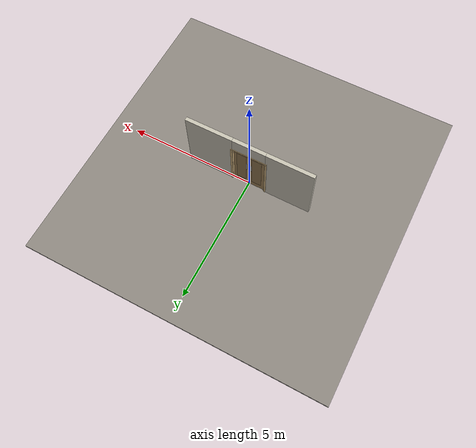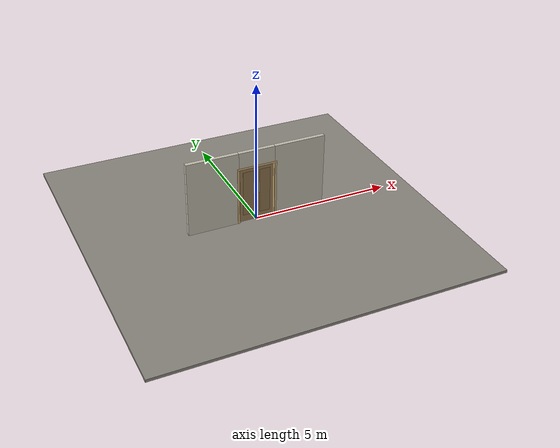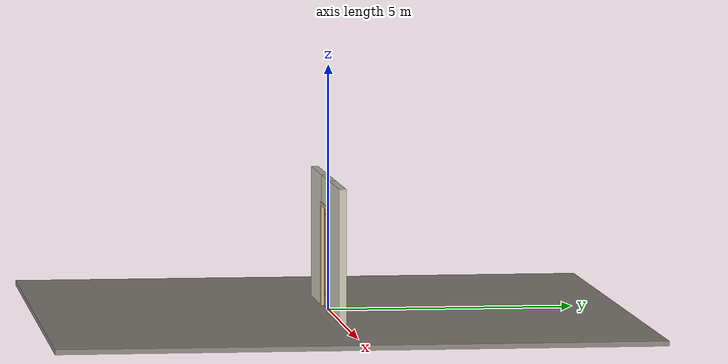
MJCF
<?xml version="1.0" ?>
<mujoco model="db0899_saloon_full">
  <compiler angle="radian" meshdir="../../hardware" texturedir="../../textures" autolimits="true" inertiafromgeom="false"/>
  <option timestep="0.002" integrator="implicitfast" cone="elliptic" impratio="10" noslip_iterations="3">
    <flag multiccd="enable"/>
  </option>
  <size memory="16M"/>
  <default>
    <geom condim="4" solref="0.005 1" solimp="0.95 0.99 0.001"/>
    <joint solreflimit="0.005 1" solimplimit="0.95 0.99 0.001"/>
    <tendon solreflimit="0.005 1"/>
    <equality solref="0.002 1"/>
  </default>
  <visual>
    <headlight ambient="0.4 0.4 0.4" diffuse="0.7 0.7 0.7" specular="0.2 0.2 0.2"/>
    <quality shadowsize="4096"/>
    <map znear="0.01" zfar="60"/>
  </visual>
  <asset>
    <material name="mat_floor" rgba="0.55 0.53 0.5 1" specular="0.2" shininess="0.15" reflectance="0"/>
    <material name="mat_wall" rgba="0.78 0.76 0.7 1" specular="0.2" shininess="0.1" reflectance="0"/>
    <material name="mat_frame" rgba="0.82 0.7 0.5 1" specular="0.2" shininess="0.45" reflectance="0"/>
    <material name="mat_leaf_a" rgba="0.62 0.503 0.34 1" specular="0.2" shininess="0.45" reflectance="0"/>
    <material name="mat_leaf_a_panel" rgba="0.571 0.463 0.313 1" specular="0.2" shininess="0.45" reflectance="0"/>
    <material name="mat_hinge" rgba="0.65 0.66 0.68 1" specular="0.74" shininess="0.5" reflectance="0.36"/>
    <material name="mat_op_stainless" rgba="0.75 0.76 0.77 1" specular="0.8" shininess="0.65" reflectance="0.4"/>
    <material name="mat_leaf_b" rgba="0.62 0.503 0.34 1" specular="0.2" shininess="0.45" reflectance="0"/>
    <material name="mat_leaf_b_panel" rgba="0.571 0.463 0.313 1" specular="0.2" shininess="0.45" reflectance="0"/>
    <texture name="skybox" type="skybox" builtin="gradient" rgb1="0.6 0.7 0.85" rgb2="0.9 0.92 0.95" width="256" height="256"/>
  </asset>
  <worldbody>
    <light name="sun" pos="1.5 -2.5 4" dir="-0.3 0.5 -0.8" directional="true" diffuse="0.8 0.8 0.8" specular="0.3 0.3 0.3" castshadow="true"/>
    <light name="fill" pos="-1.5 2.5 3" dir="0.3 -0.5 -0.7" directional="true" diffuse="0.35 0.35 0.4" castshadow="false"/>
    <camera name="robot_view" pos="0 -2.554375 1.744225" xyaxes="1 0 0 0 0.26963 0.962964" fovy="52"/>
    <camera name="far_view" pos="0 2.554375 1.744225" xyaxes="-1 0 0 0 -0.26963 0.962964" fovy="52"/>
    <camera name="iso" pos="1.941325 -2.145675 2.152925" xyaxes="0.741536 0.670913 0 -0.242917 0.268487 0.932151" fovy="46"/>
    <camera name="detail_handle" pos="0.48 -0.8 1.28" xyaxes="0.97561 0.219512 0 -0.070934 0.315262 0.94635" fovy="38"/>
    <geom name="floor" type="box" size="6 6 0.05" pos="0 0 -0.05" material="mat_floor" group="0" contype="1" conaffinity="1" friction="0.8 0.005 0.0001" density="2400"/>
    <geom name="wall_left" type="box" size="0.9235 0.0725 1.35" pos="-1.5765 0 1.35" material="mat_wall" group="0" contype="1" conaffinity="1" friction="0.6 0.005 0.0001" density="800"/>
    <geom name="wall_right" type="box" size="0.9235 0.0725 1.35" pos="1.5765 0 1.35" material="mat_wall" group="0" contype="1" conaffinity="1" friction="0.6 0.005 0.0001" density="800"/>
    <geom name="wall_header" type="box" size="0.653 0.0725 0.3115" pos="0 0 2.3885" material="mat_wall" group="0" contype="1" conaffinity="1" friction="0.6 0.005 0.0001" density="800"/>
    <geom name="jamb_hinge" type="box" size="0.0095 0.0725 1.029" pos="-0.6435 0 1.029" material="mat_frame" group="0" contype="1" conaffinity="1" friction="0.6 0.005 0.0001" density="400"/>
    <geom name="jamb_strike" type="box" size="0.0095 0.0725 1.029" pos="0.6435 0 1.029" material="mat_frame" group="0" contype="1" conaffinity="1" friction="0.6 0.005 0.0001" density="400"/>
    <geom name="stud_strike" type="box" size="0.015 0.0725 1.029" pos="0.668 0 1.029" material="mat_wall" group="0" contype="1" conaffinity="1" friction="0.6 0.005 0.0001" density="500"/>
    <geom name="jamb_head" type="box" size="0.668 0.0725 0.0095" pos="0.015 0 2.0675" material="mat_frame" group="0" contype="1" conaffinity="1" friction="0.6 0.005 0.0001" density="400"/>
    <geom name="head_stud" type="box" size="0.668 0.0725 0.015" pos="0.015 0 2.092" material="mat_wall" group="0" contype="1" conaffinity="1" friction="0.6 0.005 0.0001" density="500"/>
    <geom name="casing_l_n" type="box" size="0.035 0.008 1.0385" pos="-0.683 -0.0805 1.029" material="mat_frame" group="2" contype="0" conaffinity="0" density="400"/>
    <geom name="casing_r_n" type="box" size="0.035 0.008 1.0385" pos="0.683 -0.0805 1.029" material="mat_frame" group="2" contype="0" conaffinity="0" density="400"/>
    <geom name="casing_h_n" type="box" size="0.718 0.008 0.035" pos="0 -0.0805 2.107" material="mat_frame" group="2" contype="0" conaffinity="0" density="400"/>
    <geom name="casing_l_p" type="box" size="0.035 0.008 1.0385" pos="-0.683 0.0805 1.029" material="mat_frame" group="2" contype="0" conaffinity="0" density="400"/>
    <geom name="casing_r_p" type="box" size="0.035 0.008 1.0385" pos="0.683 0.0805 1.029" material="mat_frame" group="2" contype="0" conaffinity="0" density="400"/>
    <geom name="casing_h_p" type="box" size="0.718 0.008 0.035" pos="0 0.0805 2.107" material="mat_frame" group="2" contype="0" conaffinity="0" density="400"/>
    <geom name="pivot_bottom_socket" type="box" size="0.035 0.035 0.0115" pos="-0.606 0 0.0015" material="mat_hinge" group="1" contype="0" conaffinity="0" density="7850"/>
    <geom name="pivot_top_bracket" type="box" size="0.035 0.035 0.0025" pos="-0.606 0 2.0555" material="mat_hinge" group="1" contype="0" conaffinity="0" density="7850"/>
    <geom name="pivot_bottom_socket_2" type="box" size="0.035 0.035 0.0115" pos="0.606 0 0.0015" material="mat_hinge" group="1" contype="0" conaffinity="0" density="7850"/>
    <geom name="pivot_top_bracket_2" type="box" size="0.035 0.035 0.0025" pos="0.606 0 2.0555" material="mat_hinge" group="1" contype="0" conaffinity="0" density="7850"/>
    <site name="approach_point" pos="0 -1.5 0" quat="1 0 0 0" size="0.05" rgba="0.2 0.9 0.2 0.5" group="4"/>
    <site name="goal_point" pos="0 1.5 0" quat="1 0 0 0" size="0.05" rgba="0.2 0.9 0.2 0.5" group="4"/>
    <site name="door_plane_center" pos="0 0 1.029" quat="1 0 0 0" size="0.02" rgba="0.2 0.9 0.2 0.5" group="4"/>
    <body name="leaf_a" pos="-0.634 0 0">
      <inertial pos="0.335048 0 1.039129" mass="21.9118" quat="0.501301 -0.501301 -0.498696 -0.498696" diaginertia="0.66753124 7.294422143 7.954187703"/>
      <joint name="leaf_a_hinge" type="hinge" axis="0 0 1" pos="0.028 0 0" limited="true" range="-1.570796 1.570796" damping="0.797514" frictionloss="0.528029" stiffness="6.6" springref="0" armature="0.02"/>
      <geom name="leaf_a_slab" type="box" size="0.3 0.022 1.015" pos="0.328 0 1.03" material="mat_leaf_a" group="0" contype="1" conaffinity="1" friction="0.35 0.005 0.0001" density="1"/>
      <geom name="leaf_a_panel_0_n" type="box" size="0.19 0.003 0.8326" pos="0.328 -0.025 1.0909" material="mat_leaf_a_panel" group="1" contype="0" conaffinity="0" density="1"/>
      <geom name="leaf_a_panel_0_p" type="box" size="0.19 0.003 0.8326" pos="0.328 0.025 1.0909" material="mat_leaf_a_panel" group="1" contype="0" conaffinity="0" density="1"/>
      <geom name="pivot_bottom" type="cylinder" size="0.014 0.004" pos="0.028 0 0.01" material="mat_hinge" group="1" contype="0" conaffinity="0" density="7850"/>
      <geom name="pivot_top" type="cylinder" size="0.014 0.004" pos="0.028 0 2.049" material="mat_hinge" group="1" contype="0" conaffinity="0" density="7850"/>
      <geom name="leaf_a_push_plate_n" type="box" size="0.05 0.0008 0.2" pos="0.508 -0.0228 1.233" material="mat_op_stainless" group="1" contype="0" conaffinity="0" density="7900"/>
      <geom name="leaf_a_push_plate_p" type="box" size="0.05 0.0008 0.2" pos="0.508 0.0228 1.233" material="mat_op_stainless" group="1" contype="0" conaffinity="0" density="7900"/>
      <site name="leaf_a_push_plate_push_n" pos="0.508 -0.022 1.233" quat="1 0 0 0" size="0.012" rgba="0.2 0.9 0.2 0.5" group="4"/>
      <site name="leaf_a_push_plate_push_p" pos="0.508 0.022 1.233" quat="1 0 0 0" size="0.012" rgba="0.2 0.9 0.2 0.5" group="4"/>
      <site name="leaf_a_push_site" pos="0.478 -0.022 1.233" quat="1 0 0 0" size="0.015" rgba="0.2 0.9 0.2 0.5" group="4"/>
    </body>
    <body name="leaf_b" pos="0.634 0 0">
      <inertial pos="-0.335048 0 1.039129" mass="21.9118" quat="0.501301 0.501301 0.498696 -0.498696" diaginertia="0.66753124 7.294422143 7.954187703"/>
      <joint name="leaf_b_hinge" type="hinge" axis="0 0 -1" pos="-0.028 0 0" limited="true" range="-1.570796 1.570796" damping="0.797514" frictionloss="0.528029" stiffness="6.6" springref="0" armature="0.02"/>
      <geom name="leaf_b_slab" type="box" size="0.3 0.022 1.015" pos="-0.328 0 1.03" material="mat_leaf_b" group="0" contype="1" conaffinity="1" friction="0.35 0.005 0.0001" density="1"/>
      <geom name="leaf_b_panel_0_n" type="box" size="0.19 0.003 0.8326" pos="-0.328 -0.025 1.0909" material="mat_leaf_b_panel" group="1" contype="0" conaffinity="0" density="1"/>
      <geom name="leaf_b_panel_0_p" type="box" size="0.19 0.003 0.8326" pos="-0.328 0.025 1.0909" material="mat_leaf_b_panel" group="1" contype="0" conaffinity="0" density="1"/>
      <geom name="pivot_bottom_2" type="cylinder" size="0.014 0.004" pos="-0.028 0 0.01" material="mat_hinge" group="1" contype="0" conaffinity="0" density="7850"/>
      <geom name="pivot_top_2" type="cylinder" size="0.014 0.004" pos="-0.028 0 2.049" material="mat_hinge" group="1" contype="0" conaffinity="0" density="7850"/>
      <geom name="leaf_b_push_plate_n" type="box" size="0.05 0.0008 0.2" pos="-0.508 -0.0228 1.233" material="mat_op_stainless" group="1" contype="0" conaffinity="0" density="7900"/>
      <geom name="leaf_b_push_plate_p" type="box" size="0.05 0.0008 0.2" pos="-0.508 0.0228 1.233" material="mat_op_stainless" group="1" contype="0" conaffinity="0" density="7900"/>
      <site name="leaf_b_push_plate_push_n" pos="-0.508 -0.022 1.233" quat="1 0 0 0" size="0.012" rgba="0.2 0.9 0.2 0.5" group="4"/>
      <site name="leaf_b_push_plate_push_p" pos="-0.508 0.022 1.233" quat="1 0 0 0" size="0.012" rgba="0.2 0.9 0.2 0.5" group="4"/>
      <site name="leaf_b_push_site" pos="-0.478 -0.022 1.233" quat="1 0 0 0" size="0.015" rgba="0.2 0.9 0.2 0.5" group="4"/>
    </body>
  </worldbody>
  <sensor>
    <jointpos name="leaf_a_hinge_pos" joint="leaf_a_hinge"/>
    <jointvel name="leaf_a_hinge_vel" joint="leaf_a_hinge"/>
    <jointpos name="leaf_b_hinge_pos" joint="leaf_b_hinge"/>
    <jointvel name="leaf_b_hinge_vel" joint="leaf_b_hinge"/>
  </sensor>
</mujoco>
